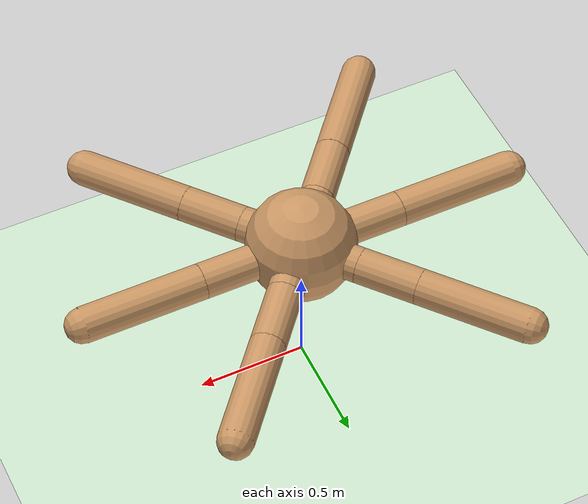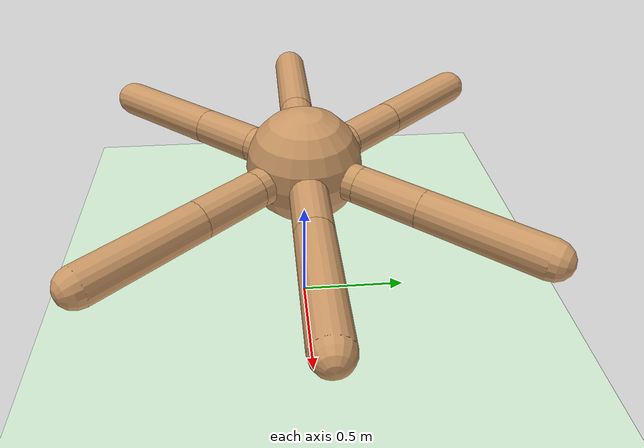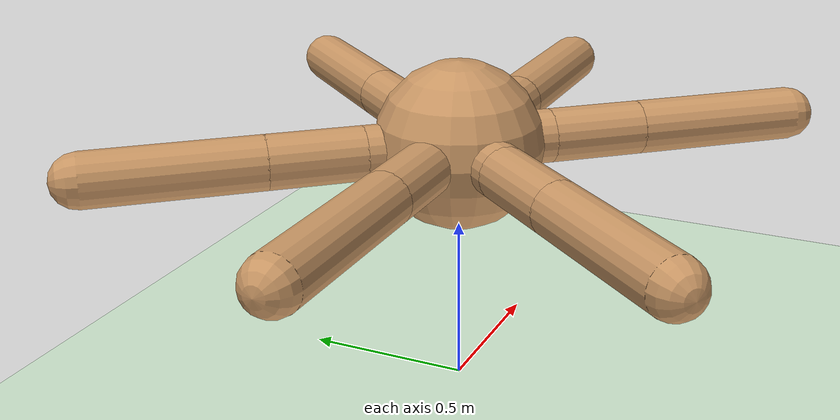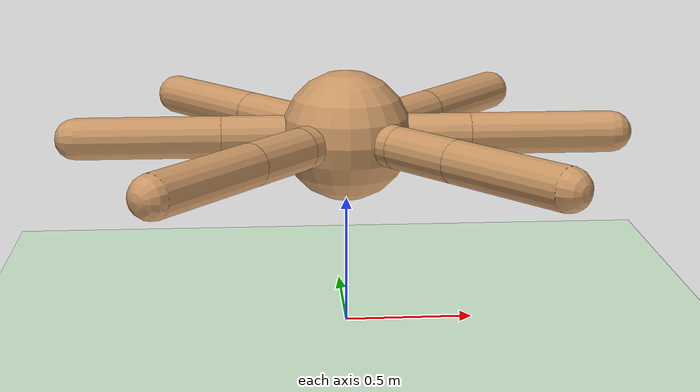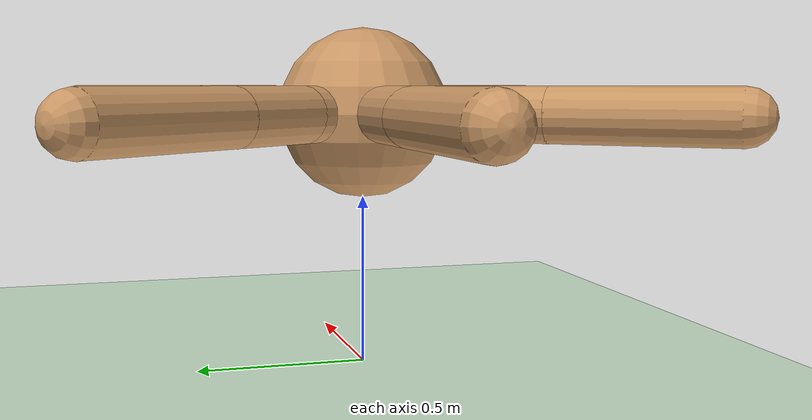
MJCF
<mujoco model="bug">
  <compiler angle="degree" coordinate="local" inertiafromgeom="true"/>
  <option integrator="RK4" timestep="0.01"/>
  <custom>
    <numeric data="0.0 0.0 0.55 1.0 0.0 0.0 0.0 0.0 1.0 0.0 -1.0 0.0 -1.0 0.0 1.0" name="init_qpos"/>
  </custom>
  <default>
    <joint armature="1" damping="1" limited="true"/>
    <geom conaffinity="0" condim="3" density="5.0" friction="1 0.5 0.5" margin="0.01" rgba="0.8 0.6 0.4 1"/>
    <motor ctrllimited="true" ctrlrange="-1. 1."/>
  </default>
  <asset>
    <texture builtin="gradient" height="100" rgb1="1 1 1" rgb2="0 0 0" type="skybox" width="100"/>
    <texture builtin="flat" height="1278" mark="cross" markrgb="1 1 1" name="texgeom" random="0.01" rgb1="0.8 0.6 0.4" rgb2="0.8 0.6 0.4" type="cube" width="127"/>
    <texture builtin="checker" height="100" name="texplane" rgb1="0 0 0" rgb2="0.8 0.8 0.8" type="2d" width="100"/>
    <material name="MatPlane" reflectance="0.5" shininess="1" specular="1" texrepeat="60 60" texture="texplane"/>
    <material name="geom" texture="texgeom" texuniform="true"/>
  </asset>
  <worldbody>
    <light cutoff="100" diffuse="1 1 1" dir="-0 0 -1.3" directional="true" exponent="1" pos="0 0 1.3" specular=".1 .1 .1"/>
    <geom conaffinity="1" condim="3" material="MatPlane" name="floor" pos="0 0 0" rgba="0.8 0.9 0.8 1" size="40 40 40" type="plane"/>
  <body name="torso" pos="0 0 0.75">
    <geom name="torso_geom" pos="0 0 0" size="0.25" type="sphere"/>
    <joint armature="0" damping="0" limited="false" margin="0.01" name="root" pos="0 0 0" type="free"/>
    <!-- Back left leg -->
    <body name="back_left_leg" pos="0 0 0">
      <geom fromto="0 0 0 0.18 0.215 0" name="aux_1_geom" size="0.08" type="capsule"/>
      <body name="aux_11" pos="0.18 0.215 0">
        <joint axis="0 0 1" name="hip_1" pos="0 0 0" range="-30 30" type="hinge"/>
        <geom fromto="0 0 0 0.18 0.215 0" name="back_left_leg_geom" size="0.08" type="capsule"/>
        <body name="aux_12" pos="0.18 0.215 0">
          <joint axis="-1 1 0" name="ankle_1" pos="0 0 0" range="30 70" type="hinge"/>
          <geom fromto="0 0 0 0.324 0.387 0" name="back_left_ankle_geom" size="0.08" type="capsule"/>
        </body>
      </body>
    </body>
    <!-- Back left leg -->
    <body name="back_right_leg" pos="0 0 0">
      <geom fromto="0 0 0 -0.18 0.215 0" name="aux_2_geom" size="0.08" type="capsule"/>
      <body name="aux_21" pos="-0.18 0.215 0">
        <joint axis="0 0 1" name="hip_2" pos="0 0 0" range="-30 30" type="hinge"/>
        <geom fromto="0 0 0 -0.18 0.215 0" name="back_right_leg_geom" size="0.08" type="capsule"/>
        <body name="aux_22" pos="-0.18 0.215 0">
          <joint axis="1 1 0" name="ankle_2" pos="0 0 0" range="-70 -30" type="hinge"/>
          <geom fromto="0 0 0 -0.324 0.387 0" name="back_right_ankle_geom" size="0.08" type="capsule"/>
        </body>
      </body>
    </body>
    <!-- Middle right leg -->
    <body name="middle_right_leg" pos="0 0 0">
      <geom fromto="0 0 0 -0.2 0 0" name="aux_3_geom" size="0.08" type="capsule"/>
      <body name="aux_31" pos="-0.2 0 0">
        <joint axis="0 0 1" name="hip_3" pos="0 0 0" range="-30 30" type="hinge"/>
        <geom fromto="0 0 0 -0.275 0 0" name="middle_right_leg_geom" size="0.08" type="capsule"/>
        <body name="aux_32" pos="-0.275 0 0">
          <joint axis="0 1 0" name="ankle_3" pos="0 0 0" range="-70 -30" type="hinge"/>
          <geom fromto="0 0 0 -0.55 0 0" name="middle_right_ankle_geom" size="0.08" type="capsule"/>
        </body>
      </body>
    </body>
    <!-- Middle left leg -->
    <body name="middle_left_leg" pos="0 0 0">
      <geom fromto="0 0 0 0.2 0 0" name="aux_4_geom" size="0.08" type="capsule"/>
      <body name="aux_41" pos="0.2 0 0">
        <joint axis="0 0 1" name="hip_4" pos="0 0 0" range="-30 30" type="hinge"/>
        <geom fromto="0 0 0 0.275 0 0" name="middle_left_leg_geom" size="0.08" type="capsule"/>
        <body name="aux_42" pos="0.275 0 0">
          <joint axis="0 1 0" name="ankle_4" pos="0 0 0" range="30 70" type="hinge"/>
          <geom fromto="0 0 0 0.55 0 0" name="middle_left_ankle_geom" size="0.08" type="capsule"/>
        </body>
      </body>
    </body>
    <!-- Front right leg -->
    <body name="front_right_leg" pos="0 0 0">
      <geom fromto="0 0 0 -0.18 -0.215 0" name="aux_5_geom" size="0.08" type="capsule"/>
      <body name="aux_51" pos="-0.18 -0.215 0">
        <joint axis="0 0 1" name="hip_5" pos="0 0 0" range="-30 30" type="hinge"/>
        <geom fromto="0 0 0 -0.18 -0.215 0" name="front_right_leg_geom" size="0.08" type="capsule"/>
        <body name="aux_52" pos="-0.18 -0.215 0">
          <joint axis="-1 1 0" name="ankle_5" pos="0 0 0" range="-70 -30" type="hinge"/>
          <geom fromto="0 0 0 -0.324 -0.387 0" name="front_right_ankle_geom" size="0.08" type="capsule"/>
        </body>
      </body>
    </body>
    <!-- Front left leg -->
    <body name="front_left_leg" pos="0 0 0">
      <geom fromto="0 0 0 0.18 -0.215 0" name="aux_6_geom" size="0.08" type="capsule"/>
      <body name="aux_61" pos="0.18 -0.215 0">
        <joint axis="0 0 1" name="hip_6" pos="0 0 0" range="-30 30" type="hinge"/>
        <geom fromto="0 0 0 0.18 -0.215 0" name="front_left_leg_geom" size="0.08" type="capsule"/>
        <body name="aux_62" pos="0.18 -0.215 0">
          <joint axis="1 1 0" name="ankle_6" pos="0 0 0" range="30 70" type="hinge"/>
          <geom fromto="0 0 0 0.324 -0.387 0" name="front_left_ankle_geom" size="0.08" type="capsule"/>
        </body>
      </body>
    </body>
  </body>
  </worldbody>
  <actuator>
    <motor ctrllimited="true" ctrlrange="-1.0 1.0" joint="hip_1" gear="150"/>
    <motor ctrllimited="true" ctrlrange="-1.0 1.0" joint="ankle_1" gear="150"/>
    <motor ctrllimited="true" ctrlrange="-1.0 1.0" joint="hip_2" gear="150"/>
    <motor ctrllimited="true" ctrlrange="-1.0 1.0" joint="ankle_2" gear="150"/>
    <motor ctrllimited="true" ctrlrange="-1.0 1.0" joint="hip_3" gear="150"/>
    <motor ctrllimited="true" ctrlrange="-1.0 1.0" joint="ankle_3" gear="150"/>
    <motor ctrllimited="true" ctrlrange="-1.0 1.0" joint="hip_4" gear="150"/>
    <motor ctrllimited="true" ctrlrange="-1.0 1.0" joint="ankle_4" gear="150"/>
    <motor ctrllimited="true" ctrlrange="-1.0 1.0" joint="hip_5" gear="150"/>
    <motor ctrllimited="true" ctrlrange="-1.0 1.0" joint="ankle_5" gear="150"/>
    <motor ctrllimited="true" ctrlrange="-1.0 1.0" joint="hip_6" gear="150"/>
    <motor ctrllimited="true" ctrlrange="-1.0 1.0" joint="ankle_6" gear="150"/>
  </actuator>
      <sensor>
    <!-- Positions -->
          from gym_env.gym.envs.mujoco.ant import AntEnv
    <jointpos name='pos_hip_1' joint='hip_1' />
    <jointpos name='pos_hip_2' joint='hip_2' />
    <jointpos name='pos_hip_3' joint='hip_3' />
    <jointpos name='pos_hip_4' joint='hip_4' />
    <jointpos name='pos_hip_5' joint='hip_5' />
    <jointpos name='pos_hip_6' joint='hip_6' />
    <jointpos name='pos_ankle_1' joint='ankle_1' />
    <jointpos name='pos_ankle_2' joint='ankle_2' />
    <jointpos name='pos_ankle_3' joint='ankle_3' />
    <jointpos name='pos_ankle_4' joint='ankle_4' />
    <jointpos name='pos_ankle_5' joint='ankle_5' />
    <jointpos name='pos_ankle_6' joint='ankle_6' />
    <!-- Velocities -->
    <jointvel name='vel_hip_1'   joint='hip_1' />
    <jointvel name='vel_hip_2'   joint='hip_2' />
    <jointvel name='vel_hip_3'   joint='hip_3' />
    <jointvel name='vel_hip_4'   joint='hip_4' />
    <jointvel name='vel_hip_5'   joint='hip_5' />
    <jointvel name='vel_hip_6'   joint='hip_6' />
    <jointvel name='vel_ankle_1' joint='ankle_1' />
    <jointvel name='vel_ankle_2' joint='ankle_2' />
    <jointvel name='vel_ankle_3' joint='ankle_3' />
    <jointvel name='vel_ankle_4' joint='ankle_4' />
    <jointvel name='vel_ankle_5' joint='ankle_5' />
    <jointvel name='vel_ankle_6' joint='ankle_6' />
  </sensor>
</mujoco>
